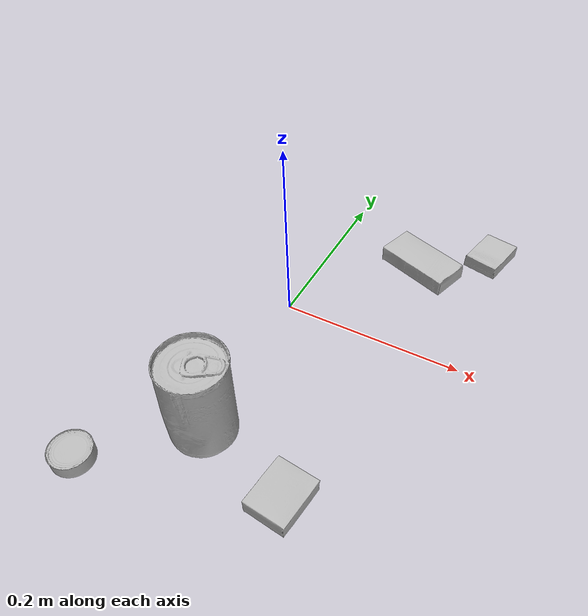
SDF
<sdf version="1.4">
  <world name="default">
    <light name="light1" type="point">
      <pose>0 0 1 0 0 0</pose>
      <diffuse>3 3 3 1</diffuse>
      <specular>3 3 3 1</specular>
    </light>
    <light name="light2" type="point">
      <pose>0 0.5 2 0 0 0</pose>
      <diffuse>1 1 1 1</diffuse>
      <specular>1 1 1 1</specular>
    </light>
    <light name="light3" type="point">
      <pose>0 0.5 2 0 0 0</pose>
      <diffuse>3 3 3 1</diffuse>
      <specular>3 3 3 1</specular>
    </light>
    <scene>
      <ambient>0.7 0.7 0.7</ambient>
    </scene>
    <model name="box1">
      <link name="link_box1">
        <collision name="default">
          <geometry>
            <mesh>
              <uri>model://cracker_box/collision_meshes/collision.obj</uri>
              <scale>0.25 0.25 0.25</scale>
            </mesh>
          </geometry>
          <surface>
            <friction>
              <ode>
                <mu>0.5</mu>
                <mu2>0.5</mu2>
              </ode>
            </friction>
          <contact>
        <ode>
            <max_vel>0</max_vel>
            <min_depth>0.0001</min_depth>
            <kp>1e8</kp>
        </ode>
    </contact></surface>
        </collision>
        <visual name="default">
          <geometry>
            <mesh>
              <uri>model://cracker_box/visual_meshes/visual.dae</uri>
              <scale>0.25 0.25 0.25</scale>
            </mesh>
          </geometry>
        </visual>
        <inertial>
          <mass>0.029061755165457726</mass>
          <pose>0.00023660456645302474 6.358561950037256e-05 -0.0004257383698131889 -0.0003162077745192934 -0.011106489600167671 0.002546795235645709</pose>
          <inertia>
            <ixx>4.620008e-06</ixx>
            <iyy>7.6285405e-06</iyy>
            <izz>1.0886628e-05</izz>
            <ixy>0</ixy>
            <ixz>0</ixz>
            <iyz>0</iyz>
          </inertia>
        </inertial>
      </link>
      <pose>0.1780777871608734 0.18274058401584625 0.009096028283238411 -0.01405044700015325 -0.005016739041128512 1.3443848445123432</pose>
    </model>
    <model name="box2">
      <link name="link_box2">
        <collision name="default">
          <geometry>
            <mesh>
              <uri>model://sugar_box/collision_meshes/collision.obj</uri>
              <scale>0.5 0.5 0.5</scale>
            </mesh>
          </geometry>
          <surface>
            <friction>
              <ode>
                <mu>0.5</mu>
                <mu2>0.5</mu2>
              </ode>
            </friction>
          <contact>
        <ode>
            <max_vel>0</max_vel>
            <min_depth>0.0001</min_depth>
            <kp>1e8</kp>
        </ode>
    </contact></surface>
        </collision>
        <visual name="default">
          <geometry>
            <mesh>
              <uri>model://sugar_box/visual_meshes/visual.dae</uri>
              <scale>0.5 0.5 0.5</scale>
            </mesh>
          </geometry>
        </visual>
        <inertial>
          <mass>0.08909860998392105</mass>
          <pose>0.0005171863595023751 1.924554817378521e-05 -0.00018182402709499002 -0.00040462606756407727 0.0010506635218583888 0.002615378789044619</pose>
          <inertia>
            <ixx>1.8559176e-05</ixx>
            <iyy>5.9987076e-05</iyy>
            <izz>7.181169e-05</izz>
            <ixy>0</ixy>
            <ixz>0</ixz>
            <iyz>0</iyz>
          </inertia>
        </inertial>
      </link>
      <pose>0.10906751453876495 0.13012948632240295 0.011399301700294018 0.0007751360482283519 -0.023433171324933073 2.8255139220380108</pose>
    </model>
    <model name="box3">
      <link name="link_box3">
        <collision name="default">
          <geometry>
            <mesh>
              <uri>model://pudding_box/collision_meshes/collision.obj</uri>
              <scale>0.5 0.5 0.5</scale>
            </mesh>
          </geometry>
          <surface>
            <friction>
              <ode>
                <mu>0.5</mu>
                <mu2>0.5</mu2>
              </ode>
            </friction>
          <contact>
        <ode>
            <max_vel>0</max_vel>
            <min_depth>0.0001</min_depth>
            <kp>1e8</kp>
        </ode>
    </contact></surface>
        </collision>
        <visual name="default">
          <geometry>
            <mesh>
              <uri>model://pudding_box/visual_meshes/visual.dae</uri>
              <scale>0.5 0.5 0.5</scale>
            </mesh>
          </geometry>
        </visual>
        <inertial>
          <mass>0.058397307991981506</mass>
          <pose>0.00024474109522998333 0.000403394311433658 -0.0002594413817860186 0.005213099939270767 -0.006603797768571226 0.020079825168092046</pose>
          <inertia>
            <ixx>1.650379e-05</ixx>
            <iyy>1.1103868e-05</iyy>
            <izz>2.437216e-05</izz>
            <ixy>0</ixy>
            <ixz>0</ixz>
            <iyz>0</iyz>
          </inertia>
        </inertial>
      </link>
      <pose>0.11188258975744247 -0.21063090860843658 0.00986290443688631 0.022348505605321426 -0.011391728842188769 3.0466490789391187</pose>
    </model>
    <model name="can1">
      <link name="link_can1">
        <collision name="default">
          <geometry>
            <mesh>
              <uri>model://tuna_fish_can/collision_meshes/collision.obj</uri>
              <scale>0.5 0.5 0.5</scale>
            </mesh>
          </geometry>
          <surface>
            <friction>
              <ode>
                <mu>0.5</mu>
                <mu2>0.5</mu2>
              </ode>
            </friction>
          <contact>
        <ode>
            <max_vel>0</max_vel>
            <min_depth>0.0001</min_depth>
            <kp>1e8</kp>
        </ode>
    </contact></surface>
        </collision>
        <visual name="default">
          <geometry>
            <mesh>
              <uri>model://tuna_fish_can/visual_meshes/visual.dae</uri>
              <scale>0.5 0.5 0.5</scale>
            </mesh>
          </geometry>
        </visual>
        <inertial>
          <mass>0.024247437715530396</mass>
          <pose>-2.0361860151751898e-05 -7.256063781824196e-06 -0.000526902440469712 -0.0017944785229743307 0.0001716120442354053 0.2405371667019961</pose>
          <inertia>
            <ixx>3.2782896e-06</ixx>
            <iyy>3.2646258e-06</iyy>
            <izz>5.609621e-06</izz>
            <ixy>0</ixy>
            <ixz>0</ixz>
            <iyz>0</iyz>
          </inertia>
        </inertial>
      </link>
      <pose>-0.07835621386766434 -0.26406559348106384 0.00851999782025814 3.8803058847667e-08 1.0630073623057124e-07 2.5268303458870265</pose>
    </model>
    <model name="can2">
      <link name="link_can2">
        <collision name="default">
          <geometry>
            <mesh>
              <uri>model://tomato_soup_can/collision_meshes/collision.obj</uri>
              <scale>1.0 1.0 1.0</scale>
            </mesh>
          </geometry>
          <surface>
            <friction>
              <ode>
                <mu>0.5</mu>
                <mu2>0.5</mu2>
              </ode>
            </friction>
          <contact>
        <ode>
            <max_vel>0</max_vel>
            <min_depth>0.0001</min_depth>
            <kp>1e8</kp>
        </ode>
    </contact></surface>
        </collision>
        <visual name="default">
          <geometry>
            <mesh>
              <uri>model://tomato_soup_can/visual_meshes/visual.dae</uri>
              <scale>1.0 1.0 1.0</scale>
            </mesh>
          </geometry>
        </visual>
        <inertial>
          <mass>0.44329848885536194</mass>
          <pose>0.0001265227037947625 0.00010805520287249237 -0.0017973989015445113 0.007020066893531886 0.00042299576578658417 -0.009903435969571123</pose>
          <inertia>
            <ixx>0.00048603912</ixx>
            <iyy>0.0004832301</iyy>
            <izz>0.00025190957</izz>
            <ixy>0</ixy>
            <ixz>0</ixz>
            <iyz>0</iyz>
          </inertia>
        </inertial>
      </link>
      <pose>0.010088018141686916 -0.18125011026859283 0.05127402022480965 -3.8058470591113127e-07 -5.604482414703006e-07 1.724818126447282</pose>
    </model>
  <physics type="ode">
      <max_contacts>50</max_contacts>
      <ode>
        <solver>
          <type>quick</type>
          <iters>75</iters>
        </solver>
        <constraints>
          <contact_max_correcting_vel>0</contact_max_correcting_vel>
          <contact_surface_layer>0</contact_surface_layer>
        </constraints>
      </ode>
    </physics></world>
</sdf>
